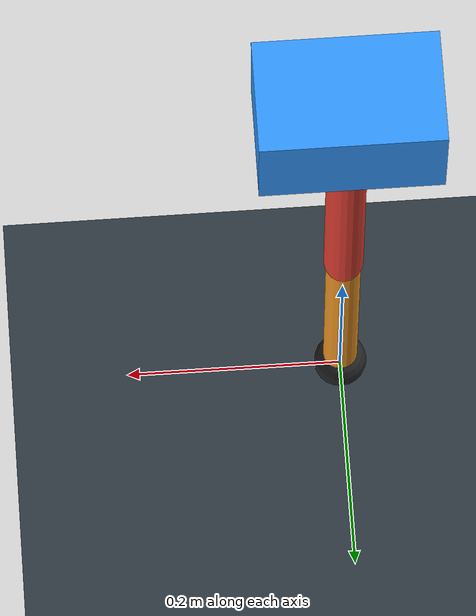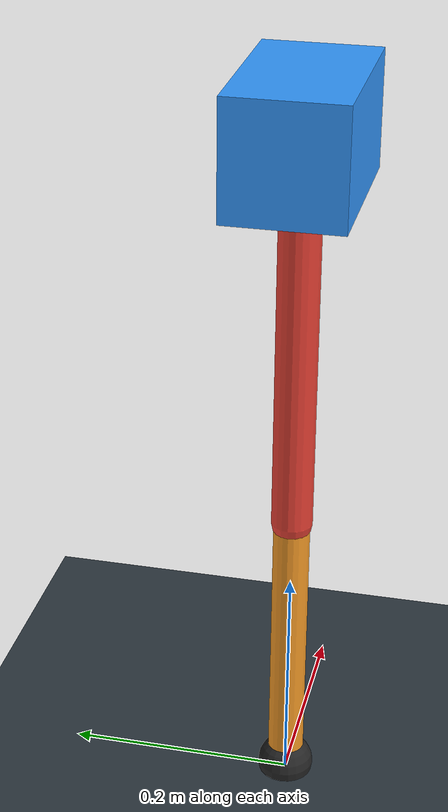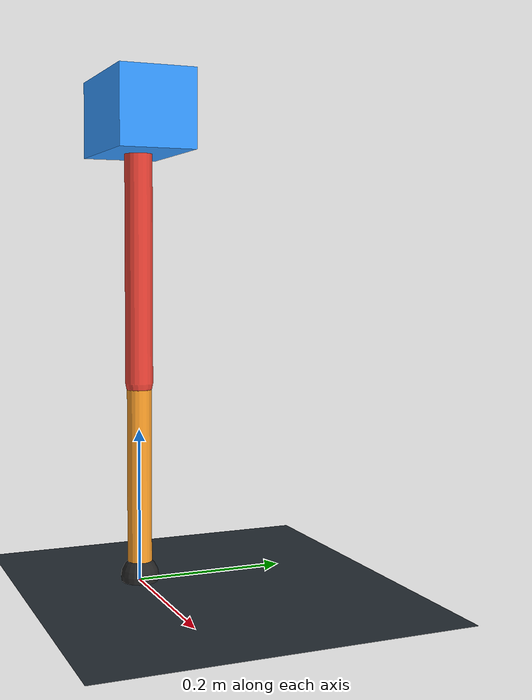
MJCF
<mujoco model="single_axis_two_bar">
  <compiler angle="radian" inertiafromgeom="true"/>
  <option timestep="0.001" integrator="implicitfast" gravity="0 0 -9.81"/>
  <default>
    <joint damping="0.08"/>
    <geom friction="1.2 0.01 0.0001" condim="3"/>
  </default>
  <worldbody>
    <geom name="floor" type="plane" size="5 5 0.1" rgba="0.18 0.22 0.25 1"/>
    <body name="carriage" pos="0 0 0.6073780410133338">
      <joint name="pole_slide" type="slide" axis="0 0 1"/>
      <geom name="payload" type="box" size="0.08 0.05 0.05" mass="2.524535358766199" rgba="0.2 0.6 1 1"/>
      <body name="thigh" pos="0 0 0">
        <joint name="hip" type="hinge" axis="0 1 0"/>
        <geom name="thigh_link" type="capsule" fromto="0 0 0 0 0 -0.3469257103686665" size="0.018" mass="0.24718915285647927" rgba="0.9 0.25 0.2 1"/>
        <body name="shank" pos="0 0 -0.3469257103686665">
          <joint name="knee" type="hinge" axis="0 1 0"/>
          <geom name="shank_link" type="capsule" fromto="0 0 0 0 0 -0.2534640226347704" size="0.016" mass="0.18059646535883583" rgba="0.95 0.6 0.15 1"/>
          <geom name="foot" type="sphere" pos="0 0 -0.2534640226347704" size="0.025" mass="0.03" rgba="0.15 0.15 0.15 1"/>
          <site name="toe" pos="0 0 -0.2534640226347704" size="0.008"/>
        </body>
      </body>
    </body>
  </worldbody>
  <actuator>
    <motor name="hip_motor" joint="hip" ctrlrange="-25.881239369519687 25.881239369519687"/>
    <motor name="knee_motor" joint="knee" ctrlrange="-101.14398720790874 101.14398720790874"/>
  </actuator>
</mujoco>
